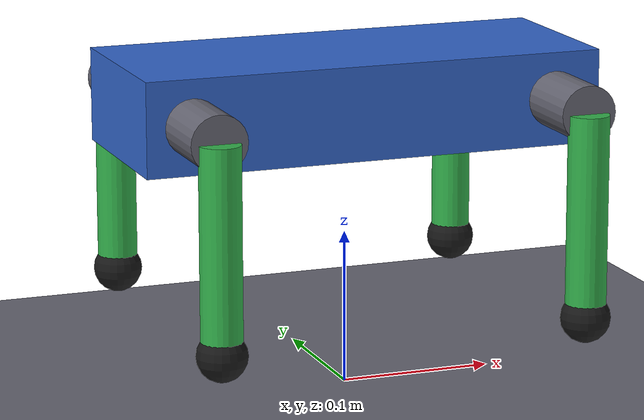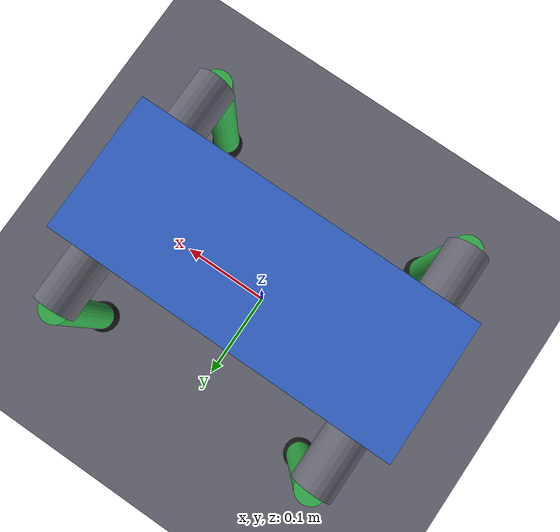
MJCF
<?xml version="1.0" ?>
<mujoco model="robot_dog">
  <compiler angle="radian" autolimits="true"/>
  <option timestep="0.004" gravity="0 0 -9.81" integrator="implicitfast"/>
  <default>
    <joint armature="0.01" damping="0.3"/>
    <geom rgba="0.4 0.4 0.45 1" friction="1 0.1 0.1"/>
    <default class="srv">
      <position kp="8" forcerange="-0.2 0.2"/>
    </default>
  </default>
  <asset>
    <texture name="grid" type="2d" builtin="checker" rgb1="0.2 0.2 0.2" rgb2="0.3 0.3 0.3" width="256" height="256"/>
    <material name="grid" texture="grid" texrepeat="8 8" reflectance="0.1"/>
  </asset>
  <worldbody>
    <light pos="0 0 2" dir="0 0 -1" diffuse="0.8 0.8 0.8"/>
    <geom name="floor" type="plane" size="5 5 0.1" material="grid" condim="3"/>
    <body name="trunk" pos="0 0 0.19">
      <freejoint name="root"/>
      <geom type="box" size="0.15 0.06 0.03" mass="0.5" rgba="0.2 0.4 0.8 1"/>
      <body name="FL_hip_link" pos="0.12 0.06 0">
        <joint name="FL_abd" axis="1.0 0 0" range="-1.0 1.0"/>
        <geom type="cylinder" fromto="0 0 0 0 0.05 0" size="0.018" mass="0.03"/>
        <body name="FL_shank" pos="0 0.05 0">
          <joint name="FL_knee" axis="0 1 0" range="-1.5 1.5"/>
          <geom type="cylinder" fromto="0 0 0 0 0 -0.13" size="0.013" mass="0.015" rgba="0.2 0.7 0.3 1"/>
          <geom type="sphere" pos="0 0 -0.13" size="0.016" mass="0.005" rgba="0.1 0.1 0.1 1"/>
        </body>
      </body>
      <body name="FR_hip_link" pos="0.12 -0.06 0">
        <joint name="FR_abd" axis="-1.0 0 0" range="-1.0 1.0"/>
        <geom type="cylinder" fromto="0 0 0 0 -0.05 0" size="0.018" mass="0.03"/>
        <body name="FR_shank" pos="0 -0.05 0">
          <joint name="FR_knee" axis="0 1 0" range="-1.5 1.5"/>
          <geom type="cylinder" fromto="0 0 0 0 0 -0.13" size="0.013" mass="0.015" rgba="0.2 0.7 0.3 1"/>
          <geom type="sphere" pos="0 0 -0.13" size="0.016" mass="0.005" rgba="0.1 0.1 0.1 1"/>
        </body>
      </body>
      <body name="RL_hip_link" pos="-0.12 0.06 0">
        <joint name="RL_abd" axis="1.0 0 0" range="-1.0 1.0"/>
        <geom type="cylinder" fromto="0 0 0 0 0.05 0" size="0.018" mass="0.03"/>
        <body name="RL_shank" pos="0 0.05 0">
          <joint name="RL_knee" axis="0 1 0" range="-1.5 1.5"/>
          <geom type="cylinder" fromto="0 0 0 0 0 -0.13" size="0.013" mass="0.015" rgba="0.2 0.7 0.3 1"/>
          <geom type="sphere" pos="0 0 -0.13" size="0.016" mass="0.005" rgba="0.1 0.1 0.1 1"/>
        </body>
      </body>
      <body name="RR_hip_link" pos="-0.12 -0.06 0">
        <joint name="RR_abd" axis="-1.0 0 0" range="-1.0 1.0"/>
        <geom type="cylinder" fromto="0 0 0 0 -0.05 0" size="0.018" mass="0.03"/>
        <body name="RR_shank" pos="0 -0.05 0">
          <joint name="RR_knee" axis="0 1 0" range="-1.5 1.5"/>
          <geom type="cylinder" fromto="0 0 0 0 0 -0.13" size="0.013" mass="0.015" rgba="0.2 0.7 0.3 1"/>
          <geom type="sphere" pos="0 0 -0.13" size="0.016" mass="0.005" rgba="0.1 0.1 0.1 1"/>
        </body>
      </body>
    </body>
  </worldbody>
  <actuator>
    <position class="srv" name="FL_abd_act" joint="FL_abd" ctrlrange="-1.0 1.0"/>
    <position class="srv" name="FL_knee_act" joint="FL_knee" ctrlrange="-1.5 1.5"/>
    <position class="srv" name="FR_abd_act" joint="FR_abd" ctrlrange="-1.0 1.0"/>
    <position class="srv" name="FR_knee_act" joint="FR_knee" ctrlrange="-1.5 1.5"/>
    <position class="srv" name="RL_abd_act" joint="RL_abd" ctrlrange="-1.0 1.0"/>
    <position class="srv" name="RL_knee_act" joint="RL_knee" ctrlrange="-1.5 1.5"/>
    <position class="srv" name="RR_abd_act" joint="RR_abd" ctrlrange="-1.0 1.0"/>
    <position class="srv" name="RR_knee_act" joint="RR_knee" ctrlrange="-1.5 1.5"/>
  </actuator>
</mujoco>
